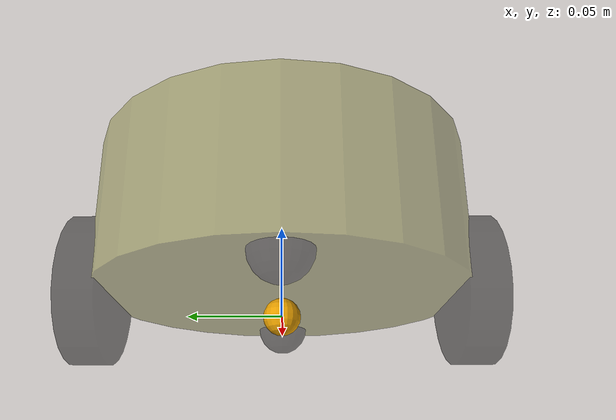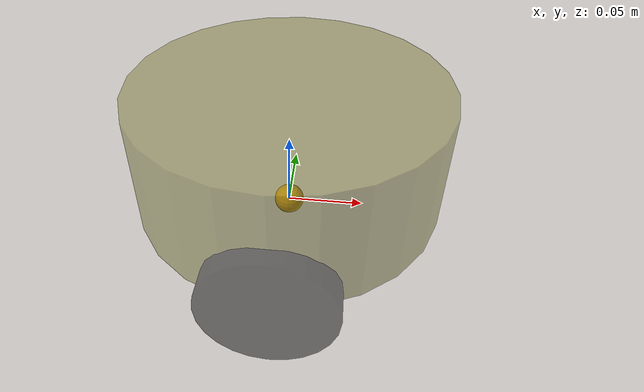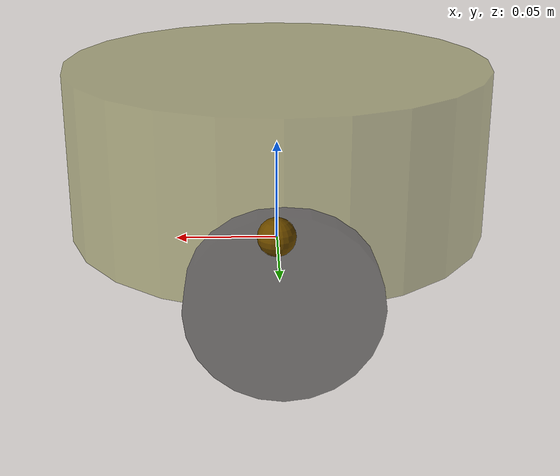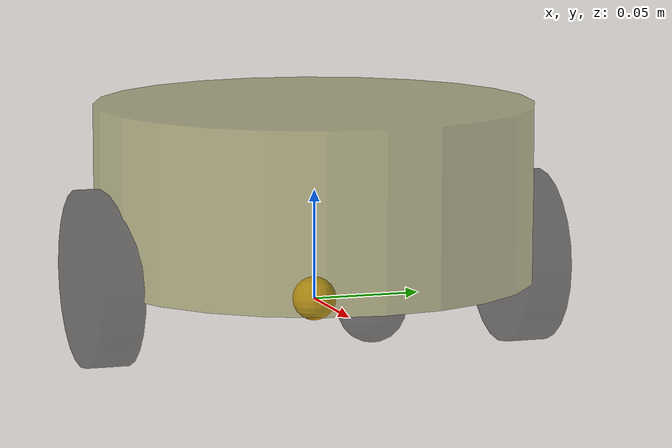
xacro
<robot name="mycar"
    xmlns:xacro="http://wiki.ros.org/xacro">
    <xacro:property name="footprint_radius" value="0.01" />
    <xacro:property name="base_radius" value="0.1"/>
    <xacro:property name="base_length" value="0.08"/>
    <xacro:property name="lidi" value="0.015"/>
    <xacro:property name="base_joint_z" value="${base_length / 2 + lidi}"/>
    <link name="base_footprint">
        <visual>
            <geometry>
                <sphere radius="${footprint_radius}"/>
            </geometry>
        </visual>
    </link>
    <link name="base_link">
        <visual>
            <geometry>
                <cylinder radius="0.1" length="0.08" />
            </geometry>
            <origin xyz="0 0 0" rpy="0 0 0" />
            <material name="baselink_color">
                <color rgba="0.5 0.5 0.2 0.5" />
            </material>
        </visual>
    </link>
    <joint name="link2footprint" type="fixed">
        <parent link="base_footprint"/>
        <child link="base_link"/>
        <origin xyz="0 0 0.05 " rpy="0 0 0" />
    </joint>

    <xacro:property name="wheel_radius" value="0.02" />
    <xacro:property name="wheel_length" value="0.02" />
    <xacro:property name="PI" value="3.1415927" />
    <xacro:property name="wheel_joint_z" value="${-1* (base_length / 2 + lidi - wheel_radius)}" />
    <xacro:macro name="wheel_func" params="wheel_name flag">
        <link name="${wheel_name}_wheel">
            <visual>
                <geometry>
                    <cylinder radius="0.04" length="0.02" />
                </geometry>
                <origin xyz="0 0 0" rpy="${PI /2} 0 0" />
                <material name="wheel_color">
                    <color rgba="0 0 0 0.5" />
                </material>
            </visual>
        </link>
        <joint name="${wheel_name}2link" type="continuous">
            <parent link="base_link" />
            <child link="${wheel_name}_wheel" />
            <origin xyz="0 ${0.1*flag} ${wheel_joint_z}" rpy="0 0 0" />
            <axis xyz="0 0 0.5" />
        </joint>
    </xacro:macro>

    <xacro:property name="small_wheel_radius" value="0.015"/>
    <xacro:property name="small_joint_z" value="${(0.5*base_length+lidi-small_wheel_radius)*-1}"/>

    <xacro:macro name="small_wheel_func" params="small_wheel_name flag">
        <link name="${small_wheel_name}_wheel">
            <visual>
                <geometry>
                    <sphere radius="${small_wheel_radius}" />
                </geometry>
                <origin xyz="0 0 0" rpy="0 0 0" />
                <material name="wheel_color">
                    <color rgba="0 0 0 0.5" />
                </material>
            </visual>
        </link>
        <joint name="${small_wheel_name}2link" type="continuous">
            <parent link="base_link" />
            <child link="${small_wheel_name}_wheel" />
            <origin xyz="${0.08*flag} 0 ${small_joint_z}" rpy="0 0 0" />
            <axis xyz="0 0 0.5" />
        </joint>
    </xacro:macro>

    <xacro:wheel_func wheel_name="left" flag="1" />
    <xacro:wheel_func wheel_name="right" flag="-1" />

    <xacro:small_wheel_func small_wheel_name="front" flag="1" />
    <xacro:small_wheel_func small_wheel_name="back" flag="-1" />

</robot>
